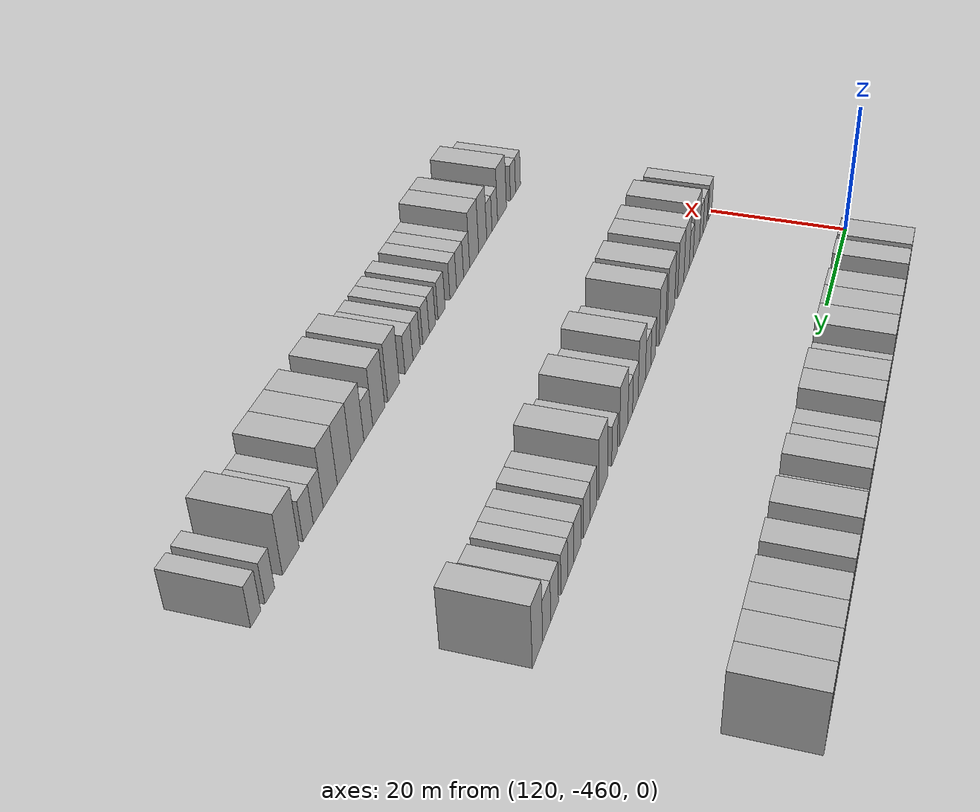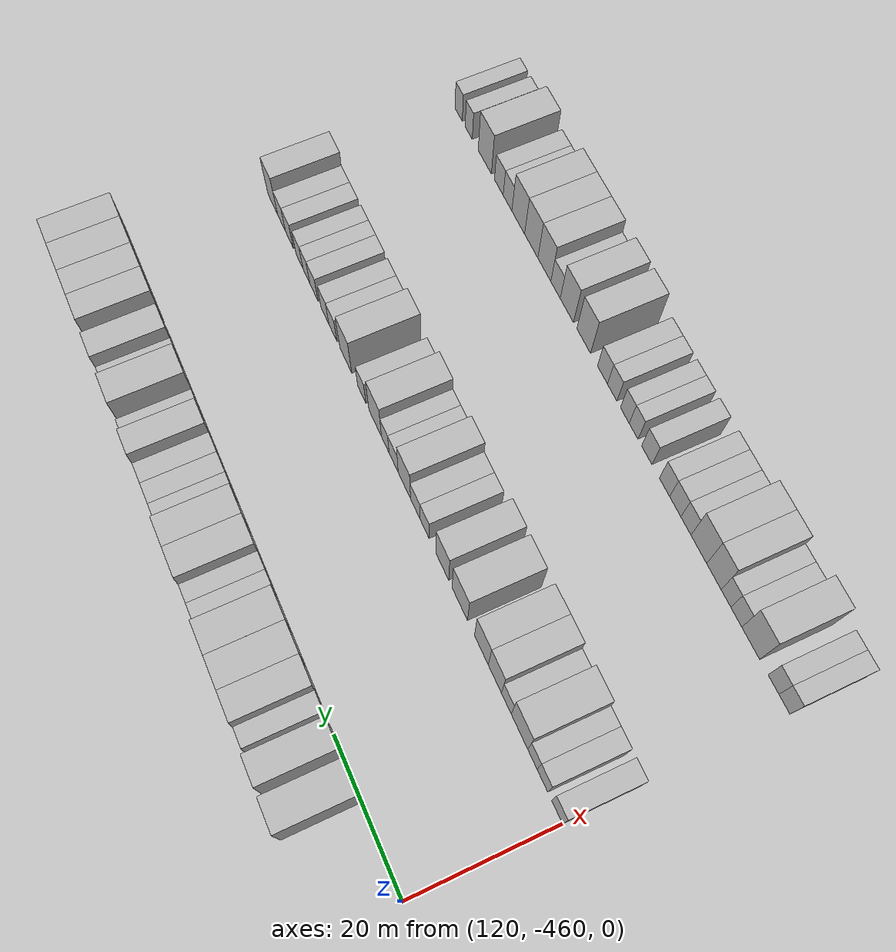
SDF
<sdf version="1.6">
 <world name="default">
  <model name="building_699">
   <static>1</static>
   <pose>115.0000 -446.1771 0 0.000000 0.000000 0.000000</pose>
   <link name="link">
    <pose>0 0 4.50 0 0 0</pose>
    <collision name="collision"><geometry><box><size>10.0000 4.3938 9.0000</size></box></geometry></collision>
    <visual name="visual">
     <cast_shadows>0</cast_shadows>
     <geometry><box><size>10.0000 4.3938 9.0000</size></box></geometry>
     <material>
      <script>
       <uri>model://HANNAS_wall/materials/scripts</uri>
       <uri>model://HANNAS_wall/materials/textures</uri>
       <name>vrc/HANNAS_wall</name>
      </script>
     </material>
    </visual>
   </link>
  </model>
  <model name="building_700">
   <static>1</static>
   <pose>115.0000 -441.0304 0 0.000000 0.000000 0.000000</pose>
   <link name="link">
    <pose>0 0 4.50 0 0 0</pose>
    <collision name="collision"><geometry><box><size>10.0000 3.8997 9.0000</size></box></geometry></collision>
    <visual name="visual">
     <cast_shadows>0</cast_shadows>
     <geometry><box><size>10.0000 3.8997 9.0000</size></box></geometry>
     <material>
      <script>
       <uri>model://HANNAS_wall/materials/scripts</uri>
       <uri>model://HANNAS_wall/materials/textures</uri>
       <name>vrc/HANNAS_wall</name>
      </script>
     </material>
    </visual>
   </link>
  </model>
  <model name="building_701">
   <static>1</static>
   <pose>115.0000 -436.7586 0 0.000000 0.000000 0.000000</pose>
   <link name="link">
    <pose>0 0 3.00 0 0 0</pose>
    <collision name="collision"><geometry><box><size>10.0000 2.6437 6.0000</size></box></geometry></collision>
    <visual name="visual">
     <cast_shadows>0</cast_shadows>
     <geometry><box><size>10.0000 2.6437 6.0000</size></box></geometry>
     <material>
      <script>
       <uri>model://HANNAS_wall/materials/scripts</uri>
       <uri>model://HANNAS_wall/materials/textures</uri>
       <name>vrc/HANNAS_wall</name>
      </script>
     </material>
    </visual>
   </link>
  </model>
  <model name="building_702">
   <static>1</static>
   <pose>115.0000 -433.4657 0 0.000000 0.000000 0.000000</pose>
   <link name="link">
    <pose>0 0 4.50 0 0 0</pose>
    <collision name="collision"><geometry><box><size>10.0000 3.9422 9.0000</size></box></geometry></collision>
    <visual name="visual">
     <cast_shadows>0</cast_shadows>
     <geometry><box><size>10.0000 3.9422 9.0000</size></box></geometry>
     <material>
      <script>
       <uri>model://HANNAS_wall/materials/scripts</uri>
       <uri>model://HANNAS_wall/materials/textures</uri>
       <name>vrc/HANNAS_wall</name>
      </script>
     </material>
    </visual>
   </link>
  </model>
  <model name="building_703">
   <static>1</static>
   <pose>115.0000 -429.3513 0 0.000000 0.000000 0.000000</pose>
   <link name="link">
    <pose>0 0 4.50 0 0 0</pose>
    <collision name="collision"><geometry><box><size>10.0000 4.2866 9.0000</size></box></geometry></collision>
    <visual name="visual">
     <cast_shadows>0</cast_shadows>
     <geometry><box><size>10.0000 4.2866 9.0000</size></box></geometry>
     <material>
      <script>
       <uri>model://HANNAS_wall/materials/scripts</uri>
       <uri>model://HANNAS_wall/materials/textures</uri>
       <name>vrc/HANNAS_wall</name>
      </script>
     </material>
    </visual>
   </link>
  </model>
  <model name="building_704">
   <static>1</static>
   <pose>115.0000 -424.9938 0 0.000000 0.000000 0.000000</pose>
   <link name="link">
    <pose>0 0 4.50 0 0 0</pose>
    <collision name="collision"><geometry><box><size>10.0000 4.4283 9.0000</size></box></geometry></collision>
    <visual name="visual">
     <cast_shadows>0</cast_shadows>
     <geometry><box><size>10.0000 4.4283 9.0000</size></box></geometry>
     <material>
      <script>
       <uri>model://HANNAS_wall/materials/scripts</uri>
       <uri>model://HANNAS_wall/materials/textures</uri>
       <name>vrc/HANNAS_wall</name>
      </script>
     </material>
    </visual>
   </link>
  </model>
  <model name="building_705">
   <static>1</static>
   <pose>115.0000 -421.3290 0 0.000000 0.000000 0.000000</pose>
   <link name="link">
    <pose>0 0 3.00 0 0 0</pose>
    <collision name="collision"><geometry><box><size>10.0000 2.9014 6.0000</size></box></geometry></collision>
    <visual name="visual">
     <cast_shadows>0</cast_shadows>
     <geometry><box><size>10.0000 2.9014 6.0000</size></box></geometry>
     <material>
      <script>
       <uri>model://HANNAS_wall/materials/scripts</uri>
       <uri>model://HANNAS_wall/materials/textures</uri>
       <name>vrc/HANNAS_wall</name>
      </script>
     </material>
    </visual>
   </link>
  </model>
  <model name="building_706">
   <static>1</static>
   <pose>115.0000 -418.6394 0 0.000000 0.000000 0.000000</pose>
   <link name="link">
    <pose>0 0 3.00 0 0 0</pose>
    <collision name="collision"><geometry><box><size>10.0000 2.4778 6.0000</size></box></geometry></collision>
    <visual name="visual">
     <cast_shadows>0</cast_shadows>
     <geometry><box><size>10.0000 2.4778 6.0000</size></box></geometry>
     <material>
      <script>
       <uri>model://HANNAS_wall/materials/scripts</uri>
       <uri>model://HANNAS_wall/materials/textures</uri>
       <name>vrc/HANNAS_wall</name>
      </script>
     </material>
    </visual>
   </link>
  </model>
  <model name="building_707">
   <static>1</static>
   <pose>115.0000 -415.3427 0 0.000000 0.000000 0.000000</pose>
   <link name="link">
    <pose>0 0 4.50 0 0 0</pose>
    <collision name="collision"><geometry><box><size>10.0000 4.1156 9.0000</size></box></geometry></collision>
    <visual name="visual">
     <cast_shadows>0</cast_shadows>
     <geometry><box><size>10.0000 4.1156 9.0000</size></box></geometry>
     <material>
      <script>
       <uri>model://HANNAS_wall/materials/scripts</uri>
       <uri>model://HANNAS_wall/materials/textures</uri>
       <name>vrc/HANNAS_wall</name>
      </script>
     </material>
    </visual>
   </link>
  </model>
  <model name="building_708">
   <static>1</static>
   <pose>115.0000 -411.2574 0 0.000000 0.000000 0.000000</pose>
   <link name="link">
    <pose>0 0 4.50 0 0 0</pose>
    <collision name="collision"><geometry><box><size>10.0000 4.0551 9.0000</size></box></geometry></collision>
    <visual name="visual">
     <cast_shadows>0</cast_shadows>
     <geometry><box><size>10.0000 4.0551 9.0000</size></box></geometry>
     <material>
      <script>
       <uri>model://HANNAS_wall/materials/scripts</uri>
       <uri>model://HANNAS_wall/materials/textures</uri>
       <name>vrc/HANNAS_wall</name>
      </script>
     </material>
    </visual>
   </link>
  </model>
  <model name="building_709">
   <static>1</static>
   <pose>115.0000 -407.8298 0 0.000000 0.000000 0.000000</pose>
   <link name="link">
    <pose>0 0 3.00 0 0 0</pose>
    <collision name="collision"><geometry><box><size>10.0000 2.8002 6.0000</size></box></geometry></collision>
    <visual name="visual">
     <cast_shadows>0</cast_shadows>
     <geometry><box><size>10.0000 2.8002 6.0000</size></box></geometry>
     <material>
      <script>
       <uri>model://HANNAS_wall/materials/scripts</uri>
       <uri>model://HANNAS_wall/materials/textures</uri>
       <name>vrc/HANNAS_wall</name>
      </script>
     </material>
    </visual>
   </link>
  </model>
  <model name="building_710">
   <static>1</static>
   <pose>115.0000 -404.9806 0 0.000000 0.000000 0.000000</pose>
   <link name="link">
    <pose>0 0 3.00 0 0 0</pose>
    <collision name="collision"><geometry><box><size>10.0000 2.8982 6.0000</size></box></geometry></collision>
    <visual name="visual">
     <cast_shadows>0</cast_shadows>
     <geometry><box><size>10.0000 2.8982 6.0000</size></box></geometry>
     <material>
      <script>
       <uri>model://HANNAS_wall/materials/scripts</uri>
       <uri>model://HANNAS_wall/materials/textures</uri>
       <name>vrc/HANNAS_wall</name>
      </script>
     </material>
    </visual>
   </link>
  </model>
  <model name="building_711">
   <static>1</static>
   <pose>115.0000 -402.1255 0 0.000000 0.000000 0.000000</pose>
   <link name="link">
    <pose>0 0 3.00 0 0 0</pose>
    <collision name="collision"><geometry><box><size>10.0000 2.8120 6.0000</size></box></geometry></collision>
    <visual name="visual">
     <cast_shadows>0</cast_shadows>
     <geometry><box><size>10.0000 2.8120 6.0000</size></box></geometry>
     <material>
      <script>
       <uri>model://HANNAS_wall/materials/scripts</uri>
       <uri>model://HANNAS_wall/materials/textures</uri>
       <name>vrc/HANNAS_wall</name>
      </script>
     </material>
    </visual>
   </link>
  </model>
  <model name="building_712">
   <static>1</static>
   <pose>115.0000 -398.9135 0 0.000000 0.000000 0.000000</pose>
   <link name="link">
    <pose>0 0 4.50 0 0 0</pose>
    <collision name="collision"><geometry><box><size>10.0000 3.6120 9.0000</size></box></geometry></collision>
    <visual name="visual">
     <cast_shadows>0</cast_shadows>
     <geometry><box><size>10.0000 3.6120 9.0000</size></box></geometry>
     <material>
      <script>
       <uri>model://HANNAS_wall/materials/scripts</uri>
       <uri>model://HANNAS_wall/materials/textures</uri>
       <name>vrc/HANNAS_wall</name>
      </script>
     </material>
    </visual>
   </link>
  </model>
  <model name="building_713">
   <static>1</static>
   <pose>115.0000 -395.7212 0 0.000000 0.000000 0.000000</pose>
   <link name="link">
    <pose>0 0 3.00 0 0 0</pose>
    <collision name="collision"><geometry><box><size>10.0000 2.7726 6.0000</size></box></geometry></collision>
    <visual name="visual">
     <cast_shadows>0</cast_shadows>
     <geometry><box><size>10.0000 2.7726 6.0000</size></box></geometry>
     <material>
      <script>
       <uri>model://HANNAS_wall/materials/scripts</uri>
       <uri>model://HANNAS_wall/materials/textures</uri>
       <name>vrc/HANNAS_wall</name>
      </script>
     </material>
    </visual>
   </link>
  </model>
  <model name="building_714">
   <static>1</static>
   <pose>115.0000 -391.1598 0 0.000000 0.000000 0.000000</pose>
   <link name="link">
    <pose>0 0 4.50 0 0 0</pose>
    <collision name="collision"><geometry><box><size>10.0000 4.3503 9.0000</size></box></geometry></collision>
    <visual name="visual">
     <cast_shadows>0</cast_shadows>
     <geometry><box><size>10.0000 4.3503 9.0000</size></box></geometry>
     <material>
      <script>
       <uri>model://HANNAS_wall/materials/scripts</uri>
       <uri>model://HANNAS_wall/materials/textures</uri>
       <name>vrc/HANNAS_wall</name>
      </script>
     </material>
    </visual>
   </link>
  </model>
  <model name="building_715">
   <static>1</static>
   <pose>115.0000 -387.7467 0 0.000000 0.000000 0.000000</pose>
   <link name="link">
    <pose>0 0 3.00 0 0 0</pose>
    <collision name="collision"><geometry><box><size>10.0000 2.4760 6.0000</size></box></geometry></collision>
    <visual name="visual">
     <cast_shadows>0</cast_shadows>
     <geometry><box><size>10.0000 2.4760 6.0000</size></box></geometry>
     <material>
      <script>
       <uri>model://HANNAS_wall/materials/scripts</uri>
       <uri>model://HANNAS_wall/materials/textures</uri>
       <name>vrc/HANNAS_wall</name>
      </script>
     </material>
    </visual>
   </link>
  </model>
  <model name="building_716">
   <static>1</static>
   <pose>115.0000 -384.6613 0 0.000000 0.000000 0.000000</pose>
   <link name="link">
    <pose>0 0 4.50 0 0 0</pose>
    <collision name="collision"><geometry><box><size>10.0000 3.6948 9.0000</size></box></geometry></collision>
    <visual name="visual">
     <cast_shadows>0</cast_shadows>
     <geometry><box><size>10.0000 3.6948 9.0000</size></box></geometry>
     <material>
      <script>
       <uri>model://HANNAS_wall/materials/scripts</uri>
       <uri>model://HANNAS_wall/materials/textures</uri>
       <name>vrc/HANNAS_wall</name>
      </script>
     </material>
    </visual>
   </link>
  </model>
  <model name="building_717">
   <static>1</static>
   <pose>115.0000 -378.8602 0 0.000000 0.000000 0.000000</pose>
   <link name="link">
    <pose>0 0 4.50 0 0 0</pose>
    <collision name="collision"><geometry><box><size>10.0000 3.9074 9.0000</size></box></geometry></collision>
    <visual name="visual">
     <cast_shadows>0</cast_shadows>
     <geometry><box><size>10.0000 3.9074 9.0000</size></box></geometry>
     <material>
      <script>
       <uri>model://HANNAS_wall/materials/scripts</uri>
       <uri>model://HANNAS_wall/materials/textures</uri>
       <name>vrc/HANNAS_wall</name>
      </script>
     </material>
    </visual>
   </link>
  </model>
  <model name="building_718">
   <static>1</static>
   <pose>115.0000 -374.9929 0 0.000000 0.000000 0.000000</pose>
   <link name="link">
    <pose>0 0 4.50 0 0 0</pose>
    <collision name="collision"><geometry><box><size>10.0000 3.8272 9.0000</size></box></geometry></collision>
    <visual name="visual">
     <cast_shadows>0</cast_shadows>
     <geometry><box><size>10.0000 3.8272 9.0000</size></box></geometry>
     <material>
      <script>
       <uri>model://HANNAS_wall/materials/scripts</uri>
       <uri>model://HANNAS_wall/materials/textures</uri>
       <name>vrc/HANNAS_wall</name>
      </script>
     </material>
    </visual>
   </link>
  </model>
  <model name="building_719">
   <static>1</static>
   <pose>115.0000 -370.9072 0 0.000000 0.000000 0.000000</pose>
   <link name="link">
    <pose>0 0 4.50 0 0 0</pose>
    <collision name="collision"><geometry><box><size>10.0000 4.3442 9.0000</size></box></geometry></collision>
    <visual name="visual">
     <cast_shadows>0</cast_shadows>
     <geometry><box><size>10.0000 4.3442 9.0000</size></box></geometry>
     <material>
      <script>
       <uri>model://HANNAS_wall/materials/scripts</uri>
       <uri>model://HANNAS_wall/materials/textures</uri>
       <name>vrc/HANNAS_wall</name>
      </script>
     </material>
    </visual>
   </link>
  </model>
  <model name="building_720">
   <static>1</static>
   <pose>115.0000 -366.7813 0 0.000000 0.000000 0.000000</pose>
   <link name="link">
    <pose>0 0 4.50 0 0 0</pose>
    <collision name="collision"><geometry><box><size>10.0000 3.9075 9.0000</size></box></geometry></collision>
    <visual name="visual">
     <cast_shadows>0</cast_shadows>
     <geometry><box><size>10.0000 3.9075 9.0000</size></box></geometry>
     <material>
      <script>
       <uri>model://HANNAS_wall/materials/scripts</uri>
       <uri>model://HANNAS_wall/materials/textures</uri>
       <name>vrc/HANNAS_wall</name>
      </script>
     </material>
    </visual>
   </link>
  </model>
  <model name="building_922">
   <static>1</static>
   <pose>145.0000 -458.5795 0 0.000000 0.000000 0.000000</pose>
   <link name="link">
    <pose>0 0 3.00 0 0 0</pose>
    <collision name="collision"><geometry><box><size>10.0000 2.8409 6.0000</size></box></geometry></collision>
    <visual name="visual">
     <cast_shadows>0</cast_shadows>
     <geometry><box><size>10.0000 2.8409 6.0000</size></box></geometry>
     <material>
      <script>
       <uri>model://HANNAS_wall/materials/scripts</uri>
       <uri>model://HANNAS_wall/materials/textures</uri>
       <name>vrc/HANNAS_wall</name>
      </script>
     </material>
    </visual>
   </link>
  </model>
  <model name="building_923">
   <static>1</static>
   <pose>145.0000 -454.7873 0 0.000000 0.000000 0.000000</pose>
   <link name="link">
    <pose>0 0 3.00 0 0 0</pose>
    <collision name="collision"><geometry><box><size>10.0000 2.7436 6.0000</size></box></geometry></collision>
    <visual name="visual">
     <cast_shadows>0</cast_shadows>
     <geometry><box><size>10.0000 2.7436 6.0000</size></box></geometry>
     <material>
      <script>
       <uri>model://HANNAS_wall/materials/scripts</uri>
       <uri>model://HANNAS_wall/materials/textures</uri>
       <name>vrc/HANNAS_wall</name>
      </script>
     </material>
    </visual>
   </link>
  </model>
  <model name="building_924">
   <static>1</static>
   <pose>145.0000 -452.1655 0 0.000000 0.000000 0.000000</pose>
   <link name="link">
    <pose>0 0 3.00 0 0 0</pose>
    <collision name="collision"><geometry><box><size>10.0000 2.5000 6.0000</size></box></geometry></collision>
    <visual name="visual">
     <cast_shadows>0</cast_shadows>
     <geometry><box><size>10.0000 2.5000 6.0000</size></box></geometry>
     <material>
      <script>
       <uri>model://HANNAS_wall/materials/scripts</uri>
       <uri>model://HANNAS_wall/materials/textures</uri>
       <name>vrc/HANNAS_wall</name>
      </script>
     </material>
    </visual>
   </link>
  </model>
  <model name="building_925">
   <static>1</static>
   <pose>145.0000 -448.6860 0 0.000000 0.000000 0.000000</pose>
   <link name="link">
    <pose>0 0 4.50 0 0 0</pose>
    <collision name="collision"><geometry><box><size>10.0000 4.4590 9.0000</size></box></geometry></collision>
    <visual name="visual">
     <cast_shadows>0</cast_shadows>
     <geometry><box><size>10.0000 4.4590 9.0000</size></box></geometry>
     <material>
      <script>
       <uri>model://HANNAS_wall/materials/scripts</uri>
       <uri>model://HANNAS_wall/materials/textures</uri>
       <name>vrc/HANNAS_wall</name>
      </script>
     </material>
    </visual>
   </link>
  </model>
  <model name="building_926">
   <static>1</static>
   <pose>145.0000 -445.0993 0 0.000000 0.000000 0.000000</pose>
   <link name="link">
    <pose>0 0 3.00 0 0 0</pose>
    <collision name="collision"><geometry><box><size>10.0000 2.7143 6.0000</size></box></geometry></collision>
    <visual name="visual">
     <cast_shadows>0</cast_shadows>
     <geometry><box><size>10.0000 2.7143 6.0000</size></box></geometry>
     <material>
      <script>
       <uri>model://HANNAS_wall/materials/scripts</uri>
       <uri>model://HANNAS_wall/materials/textures</uri>
       <name>vrc/HANNAS_wall</name>
      </script>
     </material>
    </visual>
   </link>
  </model>
  <model name="building_927">
   <static>1</static>
   <pose>145.0000 -441.9129 0 0.000000 0.000000 0.000000</pose>
   <link name="link">
    <pose>0 0 4.50 0 0 0</pose>
    <collision name="collision"><geometry><box><size>10.0000 3.6586 9.0000</size></box></geometry></collision>
    <visual name="visual">
     <cast_shadows>0</cast_shadows>
     <geometry><box><size>10.0000 3.6586 9.0000</size></box></geometry>
     <material>
      <script>
       <uri>model://HANNAS_wall/materials/scripts</uri>
       <uri>model://HANNAS_wall/materials/textures</uri>
       <name>vrc/HANNAS_wall</name>
      </script>
     </material>
    </visual>
   </link>
  </model>
  <model name="building_928">
   <static>1</static>
   <pose>145.0000 -438.1311 0 0.000000 0.000000 0.000000</pose>
   <link name="link">
    <pose>0 0 4.50 0 0 0</pose>
    <collision name="collision"><geometry><box><size>10.0000 3.9050 9.0000</size></box></geometry></collision>
    <visual name="visual">
     <cast_shadows>0</cast_shadows>
     <geometry><box><size>10.0000 3.9050 9.0000</size></box></geometry>
     <material>
      <script>
       <uri>model://HANNAS_wall/materials/scripts</uri>
       <uri>model://HANNAS_wall/materials/textures</uri>
       <name>vrc/HANNAS_wall</name>
      </script>
     </material>
    </visual>
   </link>
  </model>
  <model name="building_929">
   <static>1</static>
   <pose>145.0000 -431.9358 0 0.000000 0.000000 0.000000</pose>
   <link name="link">
    <pose>0 0 4.50 0 0 0</pose>
    <collision name="collision"><geometry><box><size>10.0000 4.4856 9.0000</size></box></geometry></collision>
    <visual name="visual">
     <cast_shadows>0</cast_shadows>
     <geometry><box><size>10.0000 4.4856 9.0000</size></box></geometry>
     <material>
      <script>
       <uri>model://HANNAS_wall/materials/scripts</uri>
       <uri>model://HANNAS_wall/materials/textures</uri>
       <name>vrc/HANNAS_wall</name>
      </script>
     </material>
    </visual>
   </link>
  </model>
  <model name="building_930">
   <static>1</static>
   <pose>145.0000 -426.7589 0 0.000000 0.000000 0.000000</pose>
   <link name="link">
    <pose>0 0 4.50 0 0 0</pose>
    <collision name="collision"><geometry><box><size>10.0000 3.8683 9.0000</size></box></geometry></collision>
    <visual name="visual">
     <cast_shadows>0</cast_shadows>
     <geometry><box><size>10.0000 3.8683 9.0000</size></box></geometry>
     <material>
      <script>
       <uri>model://HANNAS_wall/materials/scripts</uri>
       <uri>model://HANNAS_wall/materials/textures</uri>
       <name>vrc/HANNAS_wall</name>
      </script>
     </material>
    </visual>
   </link>
  </model>
  <model name="building_931">
   <static>1</static>
   <pose>145.0000 -421.4620 0 0.000000 0.000000 0.000000</pose>
   <link name="link">
    <pose>0 0 3.00 0 0 0</pose>
    <collision name="collision"><geometry><box><size>10.0000 2.7253 6.0000</size></box></geometry></collision>
    <visual name="visual">
     <cast_shadows>0</cast_shadows>
     <geometry><box><size>10.0000 2.7253 6.0000</size></box></geometry>
     <material>
      <script>
       <uri>model://HANNAS_wall/materials/scripts</uri>
       <uri>model://HANNAS_wall/materials/textures</uri>
       <name>vrc/HANNAS_wall</name>
      </script>
     </material>
    </visual>
   </link>
  </model>
  <model name="building_932">
   <static>1</static>
   <pose>145.0000 -418.6133 0 0.000000 0.000000 0.000000</pose>
   <link name="link">
    <pose>0 0 3.00 0 0 0</pose>
    <collision name="collision"><geometry><box><size>10.0000 2.9721 6.0000</size></box></geometry></collision>
    <visual name="visual">
     <cast_shadows>0</cast_shadows>
     <geometry><box><size>10.0000 2.9721 6.0000</size></box></geometry>
     <material>
      <script>
       <uri>model://HANNAS_wall/materials/scripts</uri>
       <uri>model://HANNAS_wall/materials/textures</uri>
       <name>vrc/HANNAS_wall</name>
      </script>
     </material>
    </visual>
   </link>
  </model>
  <model name="building_933">
   <static>1</static>
   <pose>145.0000 -415.1827 0 0.000000 0.000000 0.000000</pose>
   <link name="link">
    <pose>0 0 4.50 0 0 0</pose>
    <collision name="collision"><geometry><box><size>10.0000 3.8890 9.0000</size></box></geometry></collision>
    <visual name="visual">
     <cast_shadows>0</cast_shadows>
     <geometry><box><size>10.0000 3.8890 9.0000</size></box></geometry>
     <material>
      <script>
       <uri>model://HANNAS_wall/materials/scripts</uri>
       <uri>model://HANNAS_wall/materials/textures</uri>
       <name>vrc/HANNAS_wall</name>
      </script>
     </material>
    </visual>
   </link>
  </model>
  <model name="building_934">
   <static>1</static>
   <pose>145.0000 -411.7723 0 0.000000 0.000000 0.000000</pose>
   <link name="link">
    <pose>0 0 3.00 0 0 0</pose>
    <collision name="collision"><geometry><box><size>10.0000 2.9318 6.0000</size></box></geometry></collision>
    <visual name="visual">
     <cast_shadows>0</cast_shadows>
     <geometry><box><size>10.0000 2.9318 6.0000</size></box></geometry>
     <material>
      <script>
       <uri>model://HANNAS_wall/materials/scripts</uri>
       <uri>model://HANNAS_wall/materials/textures</uri>
       <name>vrc/HANNAS_wall</name>
      </script>
     </material>
    </visual>
   </link>
  </model>
  <model name="building_935">
   <static>1</static>
   <pose>145.0000 -409.0935 0 0.000000 0.000000 0.000000</pose>
   <link name="link">
    <pose>0 0 3.00 0 0 0</pose>
    <collision name="collision"><geometry><box><size>10.0000 2.4258 6.0000</size></box></geometry></collision>
    <visual name="visual">
     <cast_shadows>0</cast_shadows>
     <geometry><box><size>10.0000 2.4258 6.0000</size></box></geometry>
     <material>
      <script>
       <uri>model://HANNAS_wall/materials/scripts</uri>
       <uri>model://HANNAS_wall/materials/textures</uri>
       <name>vrc/HANNAS_wall</name>
      </script>
     </material>
    </visual>
   </link>
  </model>
  <model name="building_936">
   <static>1</static>
   <pose>145.0000 -405.8179 0 0.000000 0.000000 0.000000</pose>
   <link name="link">
    <pose>0 0 4.50 0 0 0</pose>
    <collision name="collision"><geometry><box><size>10.0000 4.1253 9.0000</size></box></geometry></collision>
    <visual name="visual">
     <cast_shadows>0</cast_shadows>
     <geometry><box><size>10.0000 4.1253 9.0000</size></box></geometry>
     <material>
      <script>
       <uri>model://HANNAS_wall/materials/scripts</uri>
       <uri>model://HANNAS_wall/materials/textures</uri>
       <name>vrc/HANNAS_wall</name>
      </script>
     </material>
    </visual>
   </link>
  </model>
  <model name="building_937">
   <static>1</static>
   <pose>145.0000 -401.3896 0 0.000000 0.000000 0.000000</pose>
   <link name="link">
    <pose>0 0 3.00 0 0 0</pose>
    <collision name="collision"><geometry><box><size>10.0000 2.7315 6.0000</size></box></geometry></collision>
    <visual name="visual">
     <cast_shadows>0</cast_shadows>
     <geometry><box><size>10.0000 2.7315 6.0000</size></box></geometry>
     <material>
      <script>
       <uri>model://HANNAS_wall/materials/scripts</uri>
       <uri>model://HANNAS_wall/materials/textures</uri>
       <name>vrc/HANNAS_wall</name>
      </script>
     </material>
    </visual>
   </link>
  </model>
  <model name="building_938">
   <static>1</static>
   <pose>145.0000 -395.9918 0 0.000000 0.000000 0.000000</pose>
   <link name="link">
    <pose>0 0 4.50 0 0 0</pose>
    <collision name="collision"><geometry><box><size>10.0000 4.0641 9.0000</size></box></geometry></collision>
    <visual name="visual">
     <cast_shadows>0</cast_shadows>
     <geometry><box><size>10.0000 4.0641 9.0000</size></box></geometry>
     <material>
      <script>
       <uri>model://HANNAS_wall/materials/scripts</uri>
       <uri>model://HANNAS_wall/materials/textures</uri>
       <name>vrc/HANNAS_wall</name>
      </script>
     </material>
    </visual>
   </link>
  </model>
  <model name="building_939">
   <static>1</static>
   <pose>145.0000 -391.5487 0 0.000000 0.000000 0.000000</pose>
   <link name="link">
    <pose>0 0 3.00 0 0 0</pose>
    <collision name="collision"><geometry><box><size>10.0000 2.8221 6.0000</size></box></geometry></collision>
    <visual name="visual">
     <cast_shadows>0</cast_shadows>
     <geometry><box><size>10.0000 2.8221 6.0000</size></box></geometry>
     <material>
      <script>
       <uri>model://HANNAS_wall/materials/scripts</uri>
       <uri>model://HANNAS_wall/materials/textures</uri>
       <name>vrc/HANNAS_wall</name>
      </script>
     </material>
    </visual>
   </link>
  </model>
  <model name="building_940">
   <static>1</static>
   <pose>145.0000 -388.7331 0 0.000000 0.000000 0.000000</pose>
   <link name="link">
    <pose>0 0 3.00 0 0 0</pose>
    <collision name="collision"><geometry><box><size>10.0000 2.8092 6.0000</size></box></geometry></collision>
    <visual name="visual">
     <cast_shadows>0</cast_shadows>
     <geometry><box><size>10.0000 2.8092 6.0000</size></box></geometry>
     <material>
      <script>
       <uri>model://HANNAS_wall/materials/scripts</uri>
       <uri>model://HANNAS_wall/materials/textures</uri>
       <name>vrc/HANNAS_wall</name>
      </script>
     </material>
    </visual>
   </link>
  </model>
  <model name="building_941">
   <static>1</static>
   <pose>145.0000 -384.8659 0 0.000000 0.000000 0.000000</pose>
   <link name="link">
    <pose>0 0 3.00 0 0 0</pose>
    <collision name="collision"><geometry><box><size>10.0000 2.9251 6.0000</size></box></geometry></collision>
    <visual name="visual">
     <cast_shadows>0</cast_shadows>
     <geometry><box><size>10.0000 2.9251 6.0000</size></box></geometry>
     <material>
      <script>
       <uri>model://HANNAS_wall/materials/scripts</uri>
       <uri>model://HANNAS_wall/materials/textures</uri>
       <name>vrc/HANNAS_wall</name>
      </script>
     </material>
    </visual>
   </link>
  </model>
  <model name="building_942">
   <static>1</static>
   <pose>145.0000 -382.1755 0 0.000000 0.000000 0.000000</pose>
   <link name="link">
    <pose>0 0 3.00 0 0 0</pose>
    <collision name="collision"><geometry><box><size>10.0000 2.4557 6.0000</size></box></geometry></collision>
    <visual name="visual">
     <cast_shadows>0</cast_shadows>
     <geometry><box><size>10.0000 2.4557 6.0000</size></box></geometry>
     <material>
      <script>
       <uri>model://HANNAS_wall/materials/scripts</uri>
       <uri>model://HANNAS_wall/materials/textures</uri>
       <name>vrc/HANNAS_wall</name>
      </script>
     </material>
    </visual>
   </link>
  </model>
  <model name="building_943">
   <static>1</static>
   <pose>145.0000 -379.6500 0 0.000000 0.000000 0.000000</pose>
   <link name="link">
    <pose>0 0 3.00 0 0 0</pose>
    <collision name="collision"><geometry><box><size>10.0000 2.5954 6.0000</size></box></geometry></collision>
    <visual name="visual">
     <cast_shadows>0</cast_shadows>
     <geometry><box><size>10.0000 2.5954 6.0000</size></box></geometry>
     <material>
      <script>
       <uri>model://HANNAS_wall/materials/scripts</uri>
       <uri>model://HANNAS_wall/materials/textures</uri>
       <name>vrc/HANNAS_wall</name>
      </script>
     </material>
    </visual>
   </link>
  </model>
  <model name="building_944">
   <static>1</static>
   <pose>145.0000 -375.9102 0 0.000000 0.000000 0.000000</pose>
   <link name="link">
    <pose>0 0 3.00 0 0 0</pose>
    <collision name="collision"><geometry><box><size>10.0000 2.8841 6.0000</size></box></geometry></collision>
    <visual name="visual">
     <cast_shadows>0</cast_shadows>
     <geometry><box><size>10.0000 2.8841 6.0000</size></box></geometry>
     <material>
      <script>
       <uri>model://HANNAS_wall/materials/scripts</uri>
       <uri>model://HANNAS_wall/materials/textures</uri>
       <name>vrc/HANNAS_wall</name>
      </script>
     </material>
    </visual>
   </link>
  </model>
  <model name="building_945">
   <static>1</static>
   <pose>145.0000 -372.9972 0 0.000000 0.000000 0.000000</pose>
   <link name="link">
    <pose>0 0 3.00 0 0 0</pose>
    <collision name="collision"><geometry><box><size>10.0000 2.9420 6.0000</size></box></geometry></collision>
    <visual name="visual">
     <cast_shadows>0</cast_shadows>
     <geometry><box><size>10.0000 2.9420 6.0000</size></box></geometry>
     <material>
      <script>
       <uri>model://HANNAS_wall/materials/scripts</uri>
       <uri>model://HANNAS_wall/materials/textures</uri>
       <name>vrc/HANNAS_wall</name>
      </script>
     </material>
    </visual>
   </link>
  </model>
  <model name="building_946">
   <static>1</static>
   <pose>145.0000 -369.6868 0 0.000000 0.000000 0.000000</pose>
   <link name="link">
    <pose>0 0 4.50 0 0 0</pose>
    <collision name="collision"><geometry><box><size>10.0000 3.6789 9.0000</size></box></geometry></collision>
    <visual name="visual">
     <cast_shadows>0</cast_shadows>
     <geometry><box><size>10.0000 3.6789 9.0000</size></box></geometry>
     <material>
      <script>
       <uri>model://HANNAS_wall/materials/scripts</uri>
       <uri>model://HANNAS_wall/materials/textures</uri>
       <name>vrc/HANNAS_wall</name>
      </script>
     </material>
    </visual>
   </link>
  </model>
  <model name="building_1158">
   <static>1</static>
   <pose>175.0000 -458.7305 0 0.000000 0.000000 0.000000</pose>
   <link name="link">
    <pose>0 0 3.00 0 0 0</pose>
    <collision name="collision"><geometry><box><size>10.0000 2.5390 6.0000</size></box></geometry></collision>
    <visual name="visual">
     <cast_shadows>0</cast_shadows>
     <geometry><box><size>10.0000 2.5390 6.0000</size></box></geometry>
     <material>
      <script>
       <uri>model://HANNAS_wall/materials/scripts</uri>
       <uri>model://HANNAS_wall/materials/textures</uri>
       <name>vrc/HANNAS_wall</name>
      </script>
     </material>
    </visual>
   </link>
  </model>
  <model name="building_1159">
   <static>1</static>
   <pose>175.0000 -456.1910 0 0.000000 0.000000 0.000000</pose>
   <link name="link">
    <pose>0 0 3.00 0 0 0</pose>
    <collision name="collision"><geometry><box><size>10.0000 2.5400 6.0000</size></box></geometry></collision>
    <visual name="visual">
     <cast_shadows>0</cast_shadows>
     <geometry><box><size>10.0000 2.5400 6.0000</size></box></geometry>
     <material>
      <script>
       <uri>model://HANNAS_wall/materials/scripts</uri>
       <uri>model://HANNAS_wall/materials/textures</uri>
       <name>vrc/HANNAS_wall</name>
      </script>
     </material>
    </visual>
   </link>
  </model>
  <model name="building_1160">
   <static>1</static>
   <pose>175.0000 -450.7732 0 0.000000 0.000000 0.000000</pose>
   <link name="link">
    <pose>0 0 4.50 0 0 0</pose>
    <collision name="collision"><geometry><box><size>10.0000 4.2956 9.0000</size></box></geometry></collision>
    <visual name="visual">
     <cast_shadows>0</cast_shadows>
     <geometry><box><size>10.0000 4.2956 9.0000</size></box></geometry>
     <material>
      <script>
       <uri>model://HANNAS_wall/materials/scripts</uri>
       <uri>model://HANNAS_wall/materials/textures</uri>
       <name>vrc/HANNAS_wall</name>
      </script>
     </material>
    </visual>
   </link>
  </model>
  <model name="building_1161">
   <static>1</static>
   <pose>175.0000 -447.3024 0 0.000000 0.000000 0.000000</pose>
   <link name="link">
    <pose>0 0 3.00 0 0 0</pose>
    <collision name="collision"><geometry><box><size>10.0000 2.6461 6.0000</size></box></geometry></collision>
    <visual name="visual">
     <cast_shadows>0</cast_shadows>
     <geometry><box><size>10.0000 2.6461 6.0000</size></box></geometry>
     <material>
      <script>
       <uri>model://HANNAS_wall/materials/scripts</uri>
       <uri>model://HANNAS_wall/materials/textures</uri>
       <name>vrc/HANNAS_wall</name>
      </script>
     </material>
    </visual>
   </link>
  </model>
  <model name="building_1162">
   <static>1</static>
   <pose>175.0000 -444.7568 0 0.000000 0.000000 0.000000</pose>
   <link name="link">
    <pose>0 0 3.00 0 0 0</pose>
    <collision name="collision"><geometry><box><size>10.0000 2.4451 6.0000</size></box></geometry></collision>
    <visual name="visual">
     <cast_shadows>0</cast_shadows>
     <geometry><box><size>10.0000 2.4451 6.0000</size></box></geometry>
     <material>
      <script>
       <uri>model://HANNAS_wall/materials/scripts</uri>
       <uri>model://HANNAS_wall/materials/textures</uri>
       <name>vrc/HANNAS_wall</name>
      </script>
     </material>
    </visual>
   </link>
  </model>
  <model name="building_1163">
   <static>1</static>
   <pose>175.0000 -441.7136 0 0.000000 0.000000 0.000000</pose>
   <link name="link">
    <pose>0 0 4.50 0 0 0</pose>
    <collision name="collision"><geometry><box><size>10.0000 3.6413 9.0000</size></box></geometry></collision>
    <visual name="visual">
     <cast_shadows>0</cast_shadows>
     <geometry><box><size>10.0000 3.6413 9.0000</size></box></geometry>
     <material>
      <script>
       <uri>model://HANNAS_wall/materials/scripts</uri>
       <uri>model://HANNAS_wall/materials/textures</uri>
       <name>vrc/HANNAS_wall</name>
      </script>
     </material>
    </visual>
   </link>
  </model>
  <model name="building_1164">
   <static>1</static>
   <pose>175.0000 -437.8917 0 0.000000 0.000000 0.000000</pose>
   <link name="link">
    <pose>0 0 4.50 0 0 0</pose>
    <collision name="collision"><geometry><box><size>10.0000 4.0024 9.0000</size></box></geometry></collision>
    <visual name="visual">
     <cast_shadows>0</cast_shadows>
     <geometry><box><size>10.0000 4.0024 9.0000</size></box></geometry>
     <material>
      <script>
       <uri>model://HANNAS_wall/materials/scripts</uri>
       <uri>model://HANNAS_wall/materials/textures</uri>
       <name>vrc/HANNAS_wall</name>
      </script>
     </material>
    </visual>
   </link>
  </model>
  <model name="building_1165">
   <static>1</static>
   <pose>175.0000 -434.5777 0 0.000000 0.000000 0.000000</pose>
   <link name="link">
    <pose>0 0 3.00 0 0 0</pose>
    <collision name="collision"><geometry><box><size>10.0000 2.6257 6.0000</size></box></geometry></collision>
    <visual name="visual">
     <cast_shadows>0</cast_shadows>
     <geometry><box><size>10.0000 2.6257 6.0000</size></box></geometry>
     <material>
      <script>
       <uri>model://HANNAS_wall/materials/scripts</uri>
       <uri>model://HANNAS_wall/materials/textures</uri>
       <name>vrc/HANNAS_wall</name>
      </script>
     </material>
    </visual>
   </link>
  </model>
  <model name="building_1166">
   <static>1</static>
   <pose>175.0000 -431.7913 0 0.000000 0.000000 0.000000</pose>
   <link name="link">
    <pose>0 0 3.00 0 0 0</pose>
    <collision name="collision"><geometry><box><size>10.0000 2.9472 6.0000</size></box></geometry></collision>
    <visual name="visual">
     <cast_shadows>0</cast_shadows>
     <geometry><box><size>10.0000 2.9472 6.0000</size></box></geometry>
     <material>
      <script>
       <uri>model://HANNAS_wall/materials/scripts</uri>
       <uri>model://HANNAS_wall/materials/textures</uri>
       <name>vrc/HANNAS_wall</name>
      </script>
     </material>
    </visual>
   </link>
  </model>
  <model name="building_1167">
   <static>1</static>
   <pose>175.0000 -428.9519 0 0.000000 0.000000 0.000000</pose>
   <link name="link">
    <pose>0 0 3.00 0 0 0</pose>
    <collision name="collision"><geometry><box><size>10.0000 2.7317 6.0000</size></box></geometry></collision>
    <visual name="visual">
     <cast_shadows>0</cast_shadows>
     <geometry><box><size>10.0000 2.7317 6.0000</size></box></geometry>
     <material>
      <script>
       <uri>model://HANNAS_wall/materials/scripts</uri>
       <uri>model://HANNAS_wall/materials/textures</uri>
       <name>vrc/HANNAS_wall</name>
      </script>
     </material>
    </visual>
   </link>
  </model>
  <model name="building_1168">
   <static>1</static>
   <pose>175.0000 -424.1817 0 0.000000 0.000000 0.000000</pose>
   <link name="link">
    <pose>0 0 3.00 0 0 0</pose>
    <collision name="collision"><geometry><box><size>10.0000 2.8087 6.0000</size></box></geometry></collision>
    <visual name="visual">
     <cast_shadows>0</cast_shadows>
     <geometry><box><size>10.0000 2.8087 6.0000</size></box></geometry>
     <material>
      <script>
       <uri>model://HANNAS_wall/materials/scripts</uri>
       <uri>model://HANNAS_wall/materials/textures</uri>
       <name>vrc/HANNAS_wall</name>
      </script>
     </material>
    </visual>
   </link>
  </model>
  <model name="building_1169">
   <static>1</static>
   <pose>175.0000 -420.5687 0 0.000000 0.000000 0.000000</pose>
   <link name="link">
    <pose>0 0 3.00 0 0 0</pose>
    <collision name="collision"><geometry><box><size>10.0000 2.4173 6.0000</size></box></geometry></collision>
    <visual name="visual">
     <cast_shadows>0</cast_shadows>
     <geometry><box><size>10.0000 2.4173 6.0000</size></box></geometry>
     <material>
      <script>
       <uri>model://HANNAS_wall/materials/scripts</uri>
       <uri>model://HANNAS_wall/materials/textures</uri>
       <name>vrc/HANNAS_wall</name>
      </script>
     </material>
    </visual>
   </link>
  </model>
  <model name="building_1170">
   <static>1</static>
   <pose>175.0000 -418.1382 0 0.000000 0.000000 0.000000</pose>
   <link name="link">
    <pose>0 0 3.00 0 0 0</pose>
    <collision name="collision"><geometry><box><size>10.0000 2.4435 6.0000</size></box></geometry></collision>
    <visual name="visual">
     <cast_shadows>0</cast_shadows>
     <geometry><box><size>10.0000 2.4435 6.0000</size></box></geometry>
     <material>
      <script>
       <uri>model://HANNAS_wall/materials/scripts</uri>
       <uri>model://HANNAS_wall/materials/textures</uri>
       <name>vrc/HANNAS_wall</name>
      </script>
     </material>
    </visual>
   </link>
  </model>
  <model name="building_1171">
   <static>1</static>
   <pose>175.0000 -414.5832 0 0.000000 0.000000 0.000000</pose>
   <link name="link">
    <pose>0 0 3.00 0 0 0</pose>
    <collision name="collision"><geometry><box><size>10.0000 2.6665 6.0000</size></box></geometry></collision>
    <visual name="visual">
     <cast_shadows>0</cast_shadows>
     <geometry><box><size>10.0000 2.6665 6.0000</size></box></geometry>
     <material>
      <script>
       <uri>model://HANNAS_wall/materials/scripts</uri>
       <uri>model://HANNAS_wall/materials/textures</uri>
       <name>vrc/HANNAS_wall</name>
      </script>
     </material>
    </visual>
   </link>
  </model>
  <model name="building_1172">
   <static>1</static>
   <pose>175.0000 -411.8152 0 0.000000 0.000000 0.000000</pose>
   <link name="link">
    <pose>0 0 3.00 0 0 0</pose>
    <collision name="collision"><geometry><box><size>10.0000 2.8695 6.0000</size></box></geometry></collision>
    <visual name="visual">
     <cast_shadows>0</cast_shadows>
     <geometry><box><size>10.0000 2.8695 6.0000</size></box></geometry>
     <material>
      <script>
       <uri>model://HANNAS_wall/materials/scripts</uri>
       <uri>model://HANNAS_wall/materials/textures</uri>
       <name>vrc/HANNAS_wall</name>
      </script>
     </material>
    </visual>
   </link>
  </model>
  <model name="building_1173">
   <static>1</static>
   <pose>175.0000 -406.3695 0 0.000000 0.000000 0.000000</pose>
   <link name="link">
    <pose>0 0 4.50 0 0 0</pose>
    <collision name="collision"><geometry><box><size>10.0000 4.0217 9.0000</size></box></geometry></collision>
    <visual name="visual">
     <cast_shadows>0</cast_shadows>
     <geometry><box><size>10.0000 4.0217 9.0000</size></box></geometry>
     <material>
      <script>
       <uri>model://HANNAS_wall/materials/scripts</uri>
       <uri>model://HANNAS_wall/materials/textures</uri>
       <name>vrc/HANNAS_wall</name>
      </script>
     </material>
    </visual>
   </link>
  </model>
  <model name="building_1174">
   <static>1</static>
   <pose>175.0000 -401.3717 0 0.000000 0.000000 0.000000</pose>
   <link name="link">
    <pose>0 0 4.50 0 0 0</pose>
    <collision name="collision"><geometry><box><size>10.0000 3.9739 9.0000</size></box></geometry></collision>
    <visual name="visual">
     <cast_shadows>0</cast_shadows>
     <geometry><box><size>10.0000 3.9739 9.0000</size></box></geometry>
     <material>
      <script>
       <uri>model://HANNAS_wall/materials/scripts</uri>
       <uri>model://HANNAS_wall/materials/textures</uri>
       <name>vrc/HANNAS_wall</name>
      </script>
     </material>
    </visual>
   </link>
  </model>
  <model name="building_1175">
   <static>1</static>
   <pose>175.0000 -397.9579 0 0.000000 0.000000 0.000000</pose>
   <link name="link">
    <pose>0 0 3.00 0 0 0</pose>
    <collision name="collision"><geometry><box><size>10.0000 2.8537 6.0000</size></box></geometry></collision>
    <visual name="visual">
     <cast_shadows>0</cast_shadows>
     <geometry><box><size>10.0000 2.8537 6.0000</size></box></geometry>
     <material>
      <script>
       <uri>model://HANNAS_wall/materials/scripts</uri>
       <uri>model://HANNAS_wall/materials/textures</uri>
       <name>vrc/HANNAS_wall</name>
      </script>
     </material>
    </visual>
   </link>
  </model>
  <model name="building_1176">
   <static>1</static>
   <pose>175.0000 -394.5320 0 0.000000 0.000000 0.000000</pose>
   <link name="link">
    <pose>0 0 4.50 0 0 0</pose>
    <collision name="collision"><geometry><box><size>10.0000 3.9981 9.0000</size></box></geometry></collision>
    <visual name="visual">
     <cast_shadows>0</cast_shadows>
     <geometry><box><size>10.0000 3.9981 9.0000</size></box></geometry>
     <material>
      <script>
       <uri>model://HANNAS_wall/materials/scripts</uri>
       <uri>model://HANNAS_wall/materials/textures</uri>
       <name>vrc/HANNAS_wall</name>
      </script>
     </material>
    </visual>
   </link>
  </model>
  <model name="building_1177">
   <static>1</static>
   <pose>175.0000 -390.4509 0 0.000000 0.000000 0.000000</pose>
   <link name="link">
    <pose>0 0 4.50 0 0 0</pose>
    <collision name="collision"><geometry><box><size>10.0000 4.1640 9.0000</size></box></geometry></collision>
    <visual name="visual">
     <cast_shadows>0</cast_shadows>
     <geometry><box><size>10.0000 4.1640 9.0000</size></box></geometry>
     <material>
      <script>
       <uri>model://HANNAS_wall/materials/scripts</uri>
       <uri>model://HANNAS_wall/materials/textures</uri>
       <name>vrc/HANNAS_wall</name>
      </script>
     </material>
    </visual>
   </link>
  </model>
  <model name="building_1178">
   <static>1</static>
   <pose>175.0000 -386.3349 0 0.000000 0.000000 0.000000</pose>
   <link name="link">
    <pose>0 0 4.50 0 0 0</pose>
    <collision name="collision"><geometry><box><size>10.0000 4.0680 9.0000</size></box></geometry></collision>
    <visual name="visual">
     <cast_shadows>0</cast_shadows>
     <geometry><box><size>10.0000 4.0680 9.0000</size></box></geometry>
     <material>
      <script>
       <uri>model://HANNAS_wall/materials/scripts</uri>
       <uri>model://HANNAS_wall/materials/textures</uri>
       <name>vrc/HANNAS_wall</name>
      </script>
     </material>
    </visual>
   </link>
  </model>
  <model name="building_1179">
   <static>1</static>
   <pose>175.0000 -382.9033 0 0.000000 0.000000 0.000000</pose>
   <link name="link">
    <pose>0 0 3.00 0 0 0</pose>
    <collision name="collision"><geometry><box><size>10.0000 2.7953 6.0000</size></box></geometry></collision>
    <visual name="visual">
     <cast_shadows>0</cast_shadows>
     <geometry><box><size>10.0000 2.7953 6.0000</size></box></geometry>
     <material>
      <script>
       <uri>model://HANNAS_wall/materials/scripts</uri>
       <uri>model://HANNAS_wall/materials/textures</uri>
       <name>vrc/HANNAS_wall</name>
      </script>
     </material>
    </visual>
   </link>
  </model>
  <model name="building_1180">
   <static>1</static>
   <pose>175.0000 -380.0758 0 0.000000 0.000000 0.000000</pose>
   <link name="link">
    <pose>0 0 3.00 0 0 0</pose>
    <collision name="collision"><geometry><box><size>10.0000 2.8599 6.0000</size></box></geometry></collision>
    <visual name="visual">
     <cast_shadows>0</cast_shadows>
     <geometry><box><size>10.0000 2.8599 6.0000</size></box></geometry>
     <material>
      <script>
       <uri>model://HANNAS_wall/materials/scripts</uri>
       <uri>model://HANNAS_wall/materials/textures</uri>
       <name>vrc/HANNAS_wall</name>
      </script>
     </material>
    </visual>
   </link>
  </model>
  <model name="building_1181">
   <static>1</static>
   <pose>175.0000 -375.4512 0 0.000000 0.000000 0.000000</pose>
   <link name="link">
    <pose>0 0 4.50 0 0 0</pose>
    <collision name="collision"><geometry><box><size>10.0000 4.3893 9.0000</size></box></geometry></collision>
    <visual name="visual">
     <cast_shadows>0</cast_shadows>
     <geometry><box><size>10.0000 4.3893 9.0000</size></box></geometry>
     <material>
      <script>
       <uri>model://HANNAS_wall/materials/scripts</uri>
       <uri>model://HANNAS_wall/materials/textures</uri>
       <name>vrc/HANNAS_wall</name>
      </script>
     </material>
    </visual>
   </link>
  </model>
  <model name="building_1182">
   <static>1</static>
   <pose>175.0000 -370.0485 0 0.000000 0.000000 0.000000</pose>
   <link name="link">
    <pose>0 0 3.00 0 0 0</pose>
    <collision name="collision"><geometry><box><size>10.0000 2.4161 6.0000</size></box></geometry></collision>
    <visual name="visual">
     <cast_shadows>0</cast_shadows>
     <geometry><box><size>10.0000 2.4161 6.0000</size></box></geometry>
     <material>
      <script>
       <uri>model://HANNAS_wall/materials/scripts</uri>
       <uri>model://HANNAS_wall/materials/textures</uri>
       <name>vrc/HANNAS_wall</name>
      </script>
     </material>
    </visual>
   </link>
  </model>
  <model name="building_1183">
   <static>1</static>
   <pose>175.0000 -366.6055 0 0.000000 0.000000 0.000000</pose>
   <link name="link">
    <pose>0 0 3.00 0 0 0</pose>
    <collision name="collision"><geometry><box><size>10.0000 2.4699 6.0000</size></box></geometry></collision>
    <visual name="visual">
     <cast_shadows>0</cast_shadows>
     <geometry><box><size>10.0000 2.4699 6.0000</size></box></geometry>
     <material>
      <script>
       <uri>model://HANNAS_wall/materials/scripts</uri>
       <uri>model://HANNAS_wall/materials/textures</uri>
       <name>vrc/HANNAS_wall</name>
      </script>
     </material>
    </visual>
   </link>
  </model>
 </world>
</sdf>
